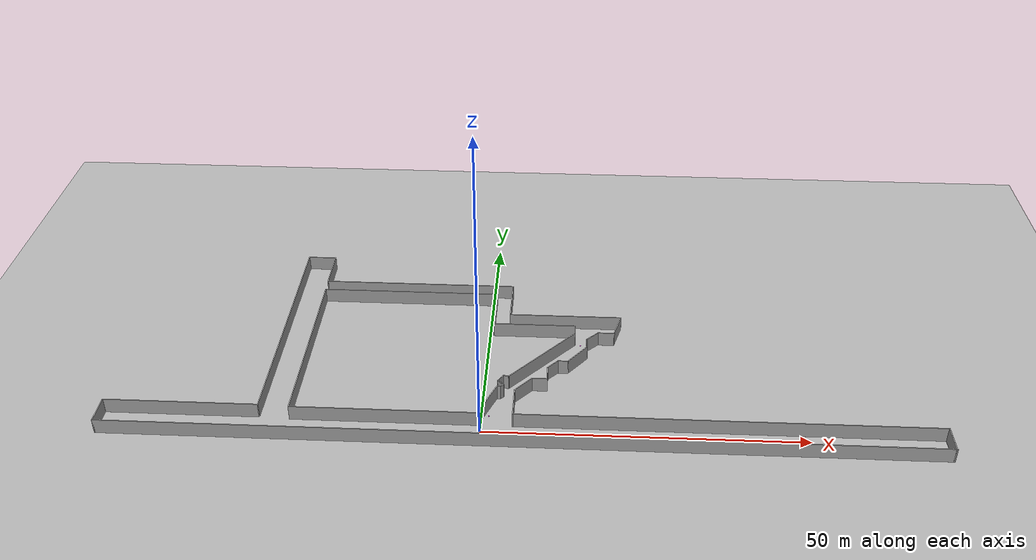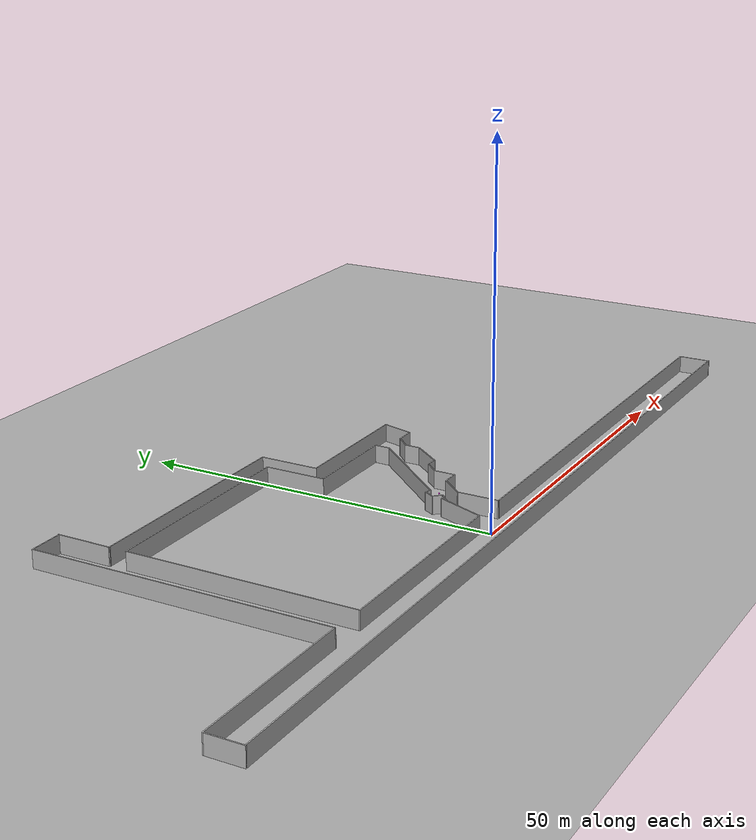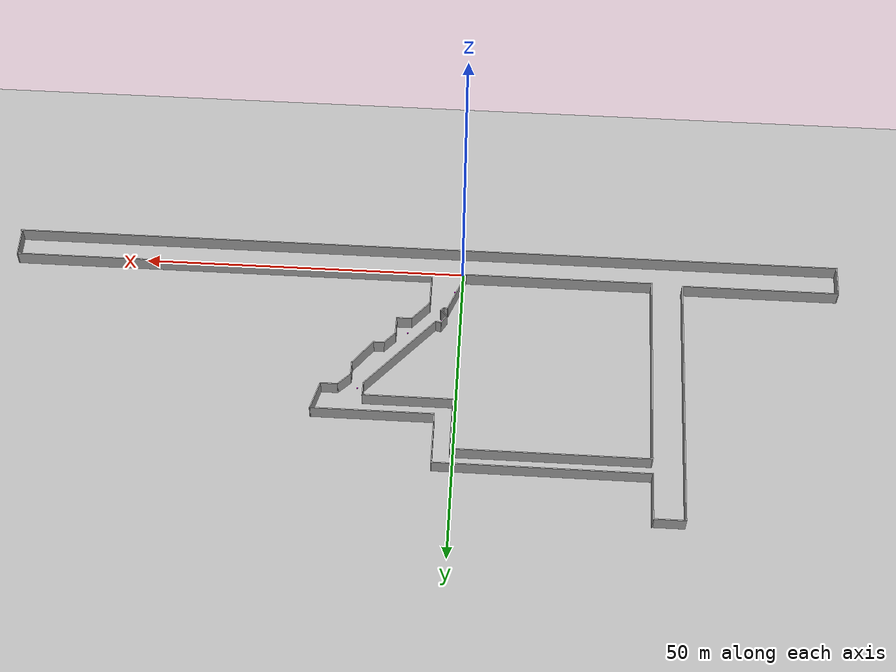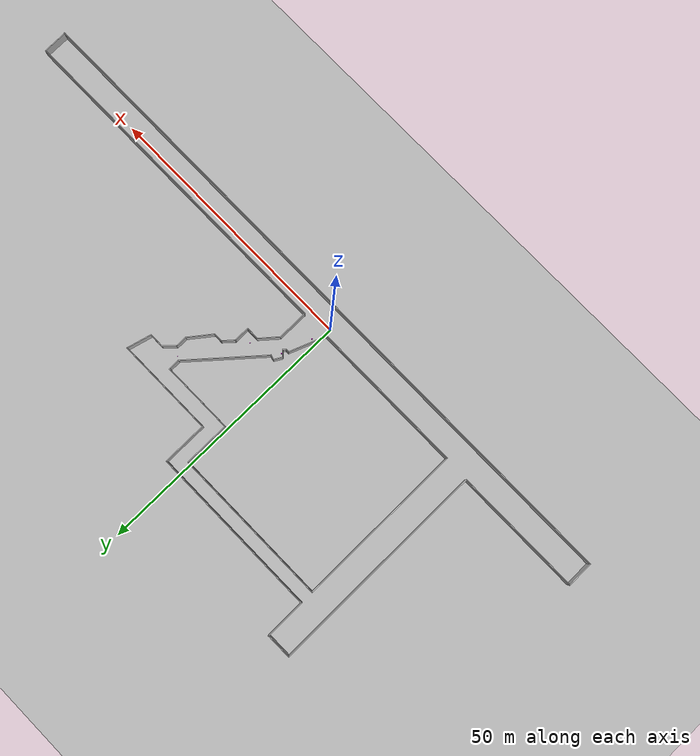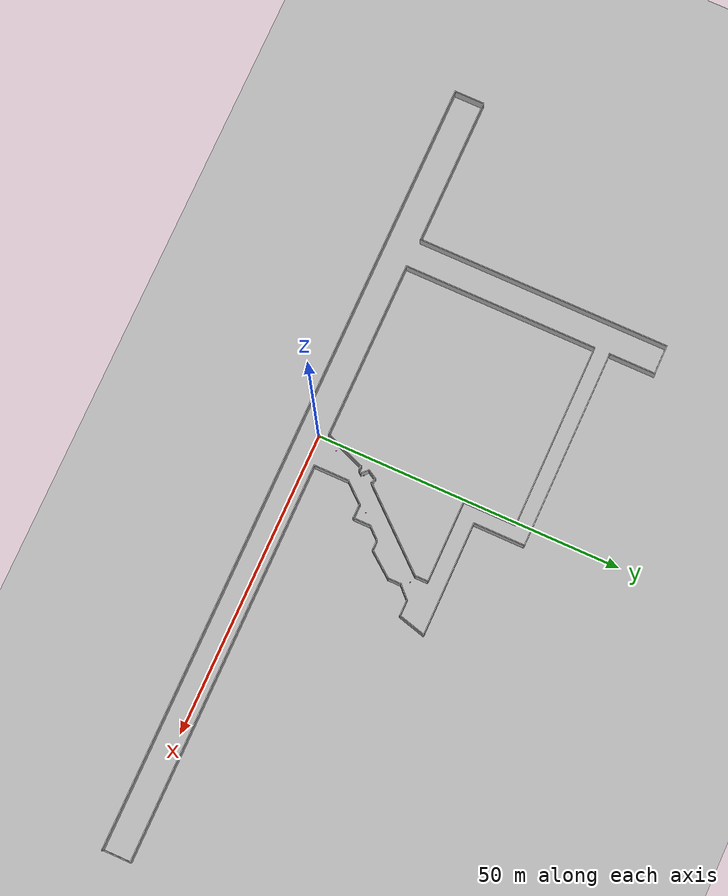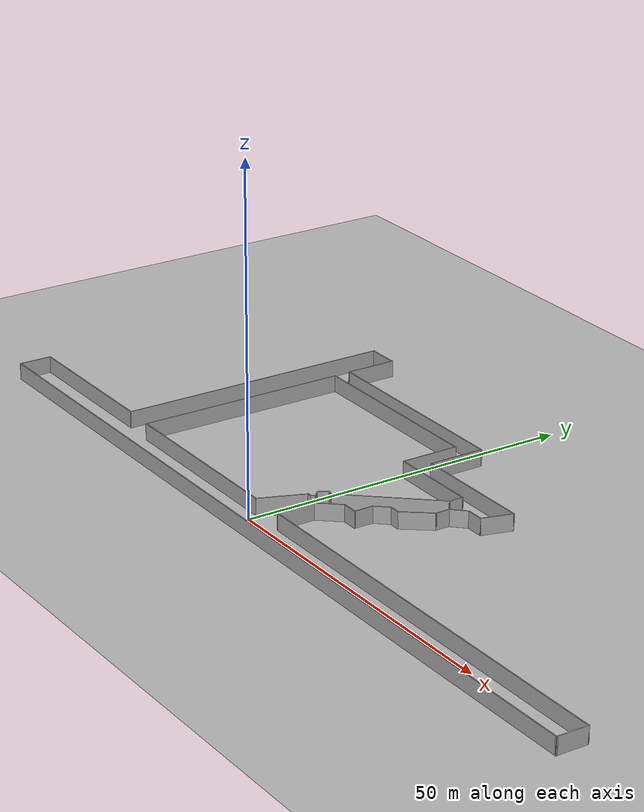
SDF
<?xml version="1.0"?>
<sdf version="1.4">
<world name="racecar_tunnel">
  <gui>
    <camera name='main'>
      <pose>0 0 10 0 1.571 0</pose>
    </camera>
  </gui>

  <model name="ground_plane">
    <static>true</static>
    <link name="link">
      <collision name="collision">
        <geometry>
          <plane>
            <normal>0 0 1</normal>
            <size>150 150</size>
          </plane>
        </geometry>
        <surface>
          <friction>
            <ode>
              <mu>100</mu>
              <mu2>50</mu2>
            </ode>
          </friction>
        </surface>
      </collision>
      <visual name="visual">
        <cast_shadows>false</cast_shadows>
        <geometry>
          <plane>
            <normal>0 0 1</normal>
            <size>150 150</size>
          </plane>
        </geometry>
        <material>
          <ambient>0.3 0.3 0.3 1.0</ambient>
          <diffuse>0.7 0.7 0.7 1.0</diffuse>
          <specular>0.01 0.01 0.01 1.0</specular>
        </material>
      </visual>
    </link>
  </model>

  <model name="sphere_1">
    <static>true</static>
    <pose>1.10 3.4 0.216 0 0 0</pose>
    <link name="link">
      <collision name="collision">
        <geometry>
          <sphere>
            <radius>0.1</radius>
          </sphere>
        </geometry>
      </collision>
      <visual name="visual">
        <cast_shadows>false</cast_shadows>
        <geometry>
          <sphere>
            <radius>0.1</radius>
          </sphere>
        </geometry>
        <material>
          <ambient>1 0 1 1</ambient>
          <diffuse>1 0 1 1</diffuse>
          <specular>1 0 1 1</specular>
        </material>
      </visual>
    </link>
  </model>

  <model name="sphere_2">
    <static>true</static>
    <pose>8 11.5 0.216 0 0 0</pose>
    <link name="link">
      <collision name="collision">
        <geometry>
          <sphere>
            <radius>0.1</radius>
          </sphere>
        </geometry>
      </collision>
      <visual name="visual">
        <cast_shadows>false</cast_shadows>
        <geometry>
          <sphere>
            <radius>0.1</radius>
          </sphere>
        </geometry>
        <material>
          <ambient>1 0 1 1</ambient>
          <diffuse>1 0 1 1</diffuse>
          <specular>1 0 1 1</specular>
        </material>
      </visual>
    </link>
  </model>

  <model name="sphere_3">
    <static>true</static>
    <pose>15 22 0.216 0 0 0</pose>
    <link name="link">
      <collision name="collision">
        <geometry>
          <sphere>
            <radius>0.1</radius>
          </sphere>
        </geometry>
      </collision>
      <visual name="visual">
        <cast_shadows>false</cast_shadows>
        <geometry>
          <sphere>
            <radius>0.1</radius>
          </sphere>
        </geometry>
        <material>
          <ambient>1 0 1 1</ambient>
          <diffuse>1 0 1 1</diffuse>
          <specular>1 0 1 1</specular>
        </material>
      </visual>
    </link>
  </model>

  <model name="sphere_4">
    <static>true</static>
    <pose>2.88 8.88 0.216 0 0 0</pose>
    <link name="link">
      <collision name="collision">
        <geometry>
          <sphere>
            <radius>0.1</radius>
          </sphere>
        </geometry>
      </collision>
      <visual name="visual">
        <cast_shadows>false</cast_shadows>
        <geometry>
          <sphere>
            <radius>0.1</radius>
          </sphere>
        </geometry>
        <material>
          <ambient>1 0 1 1</ambient>
          <diffuse>1 0 1 1</diffuse>
          <specular>1 0 1 1</specular>
        </material>
      </visual>
    </link>
  </model>

  <include>
    <uri>model://MIT_Tunnel</uri>
    <pose>6 20 0 0 0 0</pose>
  </include>

</world>
</sdf>
